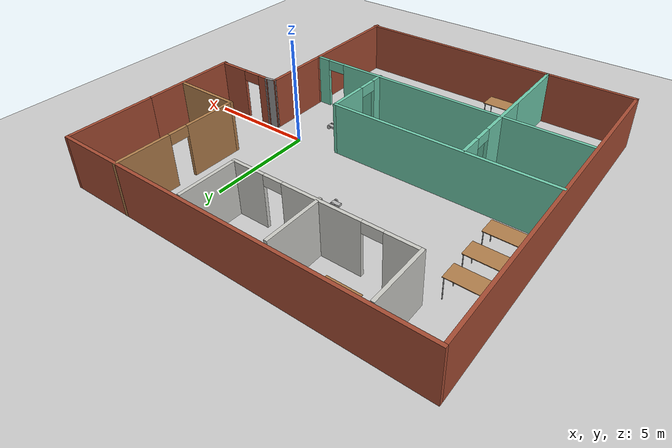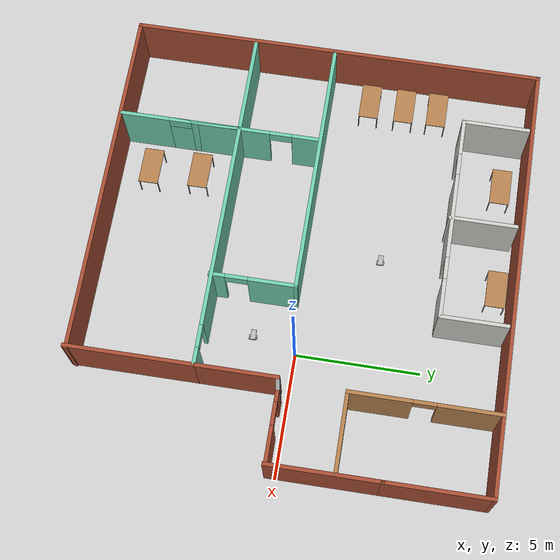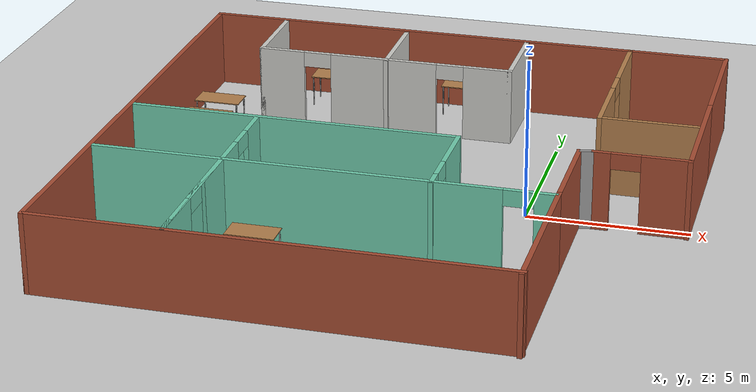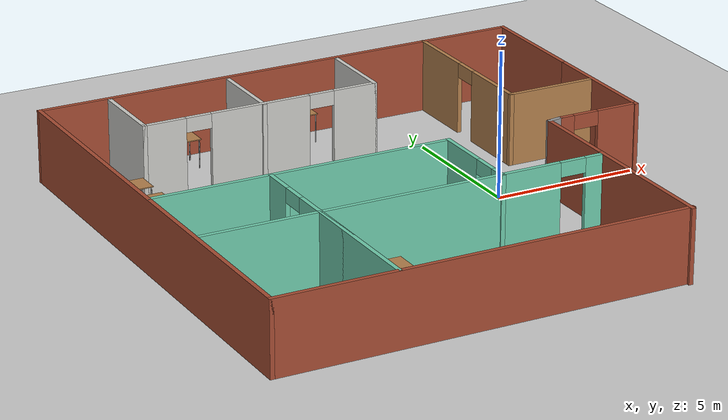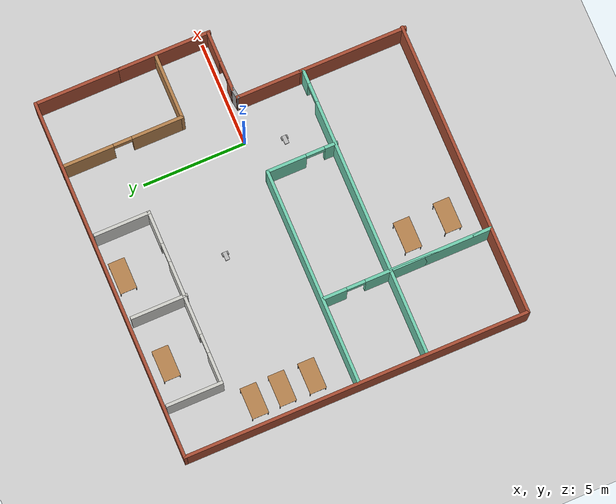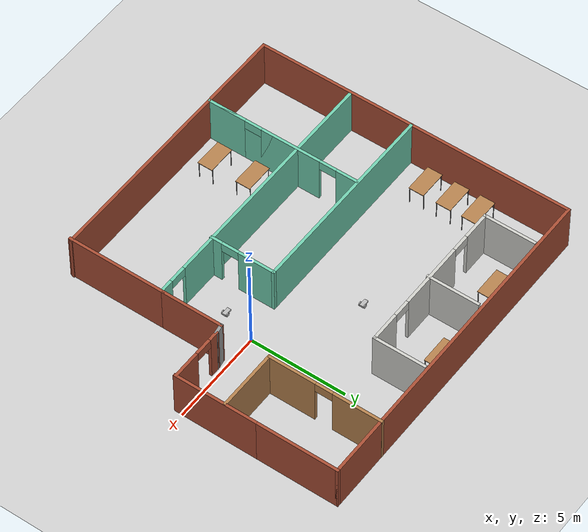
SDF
<sdf version="1.6">
 <world name="default">
  <plugin name="WelcomeMessage" filename="libwelcome_message.so"/>
  <light name="sun" type="directional">
   <pose>0 0 10 0 -0 0</pose>
   <diffuse>0.8 0.8 0.8 1</diffuse>
   <specular>0.2 0.2 0.2 1</specular>
   <attenuation>
    <range>1000</range>
    <constant>0.9</constant>
    <linear>0.01</linear>
    <quadratic>0.001</quadratic>
   </attenuation>
   <direction>-0.5 0.1 -0.9</direction>
  </light>
  <model name="ground_plane">
   <static>1</static>
   <link name="link">
    <collision name="collision">
     <geometry><plane><normal>0 0 1</normal><size>100 100</size></plane></geometry>
     <surface>
      <contact><collide_bitmask>65535</collide_bitmask></contact>
      <friction><ode><mu>100</mu><mu2>50</mu2></ode></friction>
     </surface>
    </collision>
    <visual name="visual">
     <cast_shadows>0</cast_shadows>
     <geometry><plane><normal>0 0 1</normal><size>100 100</size></plane></geometry>
     <material>
      <script><uri>file://media/materials/scripts/gazebo.material</uri><name>Gazebo/Grey</name></script>
     </material>
    </visual>
   </link>
  </model>
  <gravity>0 0 -9.8</gravity>
  <magnetic_field>6e-06 2.3e-05 -4.2e-05</magnetic_field>
  <atmosphere type="adiabatic"/>
  <physics name="default_physics" default="0" type="ode">
   <max_step_size>0.001</max_step_size>
   <real_time_factor>1</real_time_factor>
   <real_time_update_rate>1000</real_time_update_rate>
  </physics>
  <scene><ambient>0.4 0.4 0.4 1</ambient><background>0.7 0.7 0.7 1</background><shadows>1</shadows></scene>
  <spherical_coordinates>
   <surface_model>EARTH_WGS84</surface_model>
   <latitude_deg>0</latitude_deg>
   <longitude_deg>0</longitude_deg>
   <elevation>0</elevation>
   <heading_deg>0</heading_deg>
  </spherical_coordinates>
  <model name="My_building">
   <pose>-3.765 -0.202616 0 0 -0 0</pose>
   <link name="Wall_0">
    <pose>7.25 -0.08333 0 0 -0 0</pose>
    <visual name="Wall_0_Visual_0">
     <pose>-1.21198 0 1.25 0 -0 0</pose>
     <geometry><box><size>0.57604 0.15 2.5</size></box></geometry>
     <material>
      <script><uri>file://media/materials/scripts/gazebo.material</uri><name>Gazebo/Bricks</name></script>
      <ambient>1 1 1 1</ambient>
     </material>
     <meta><layer>0</layer></meta>
    </visual>
    <collision name="Wall_0_Collision_0">
     <geometry><box><size>0.57604 0.15 2.5</size></box></geometry>
     <pose>-1.21198 0 1.25 0 -0 0</pose>
    </collision>
    <visual name="Wall_0_Visual_1">
     <pose>0.73802 0 1.25 0 -0 0</pose>
     <geometry><box><size>1.52396 0.15 2.5</size></box></geometry>
     <material>
      <script><uri>file://media/materials/scripts/gazebo.material</uri><name>Gazebo/Bricks</name></script>
      <ambient>1 1 1 1</ambient>
     </material>
     <meta><layer>0</layer></meta>
    </visual>
    <collision name="Wall_0_Collision_1">
     <geometry><box><size>1.52396 0.15 2.5</size></box></geometry>
     <pose>0.73802 0 1.25 0 -0 0</pose>
    </collision>
    <visual name="Wall_0_Visual_2">
     <pose>-0.47396 0 2.25 0 -0 0</pose>
     <geometry><box><size>0.9 0.15 0.5</size></box></geometry>
     <material>
      <script><uri>file://media/materials/scripts/gazebo.material</uri><name>Gazebo/Bricks</name></script>
      <ambient>1 1 1 1</ambient>
     </material>
     <meta><layer>0</layer></meta>
    </visual>
    <collision name="Wall_0_Collision_2">
     <geometry><box><size>0.9 0.15 0.5</size></box></geometry>
     <pose>-0.47396 0 2.25 0 -0 0</pose>
    </collision>
   </link>
   <link name="Wall_10">
    <collision name="Wall_10_Collision">
     <geometry><box><size>3.25 0.15 2.5</size></box></geometry>
     <pose>0 0 1.25 0 -0 0</pose>
    </collision>
    <visual name="Wall_10_Visual">
     <pose>0 0 1.25 0 -0 0</pose>
     <geometry><box><size>3.25 0.15 2.5</size></box></geometry>
     <material>
      <script><uri>file://media/materials/scripts/gazebo.material</uri><name>Gazebo/Bricks</name></script>
      <ambient>1 1 1 1</ambient>
     </material>
     <meta><layer>0</layer></meta>
    </visual>
    <pose>5.39586 -1.70043 0 0 -0 1.5708</pose>
   </link>
   <link name="Wall_11">
    <collision name="Wall_11_Collision">
     <geometry><box><size>0.584358 0.15 2.5</size></box></geometry>
     <pose>0 0 1.25 0 -0 0</pose>
    </collision>
    <visual name="Wall_11_Visual">
     <pose>0 0 1.25 0 -0 0</pose>
     <geometry><box><size>0.584358 0.15 2.5</size></box></geometry>
     <material>
      <script><uri>file://media/materials/scripts/gazebo.material</uri><name>Gazebo/Grey</name></script>
      <ambient>1 1 1 1</ambient>
     </material>
     <meta><layer>0</layer></meta>
    </visual>
    <pose>5.61043 -0.116881 0 0 -0 0.155107</pose>
   </link>
   <link name="Wall_13">
    <pose>-1.60533 -3.36158 0 0 -0 0</pose>
    <visual name="Wall_13_Visual_0">
     <pose>-0.790462 0 1.25 0 -0 0</pose>
     <geometry><box><size>12.4191 0.15 2.5</size></box></geometry>
     <material>
      <script><uri>file://media/materials/scripts/gazebo.material</uri><name>Gazebo/Grey</name></script>
      <ambient>0.435294 0.796078 0.67451 1</ambient>
     </material>
     <meta><layer>0</layer></meta>
    </visual>
    <collision name="Wall_13_Collision_0">
     <geometry><box><size>12.4191 0.15 2.5</size></box></geometry>
     <pose>-0.790462 0 1.25 0 -0 0</pose>
    </collision>
    <visual name="Wall_13_Visual_1">
     <pose>6.65954 0 1.25 0 -0 0</pose>
     <geometry><box><size>0.680924 0.15 2.5</size></box></geometry>
     <material>
      <script><uri>file://media/materials/scripts/gazebo.material</uri><name>Gazebo/Grey</name></script>
      <ambient>0.435294 0.796078 0.67451 1</ambient>
     </material>
     <meta><layer>0</layer></meta>
    </visual>
    <collision name="Wall_13_Collision_1">
     <geometry><box><size>0.680924 0.15 2.5</size></box></geometry>
     <pose>6.65954 0 1.25 0 -0 0</pose>
    </collision>
    <visual name="Wall_13_Visual_2">
     <pose>5.86908 0 2.25 0 -0 0</pose>
     <geometry><box><size>0.9 0.15 0.5</size></box></geometry>
     <material>
      <script><uri>file://media/materials/scripts/gazebo.material</uri><name>Gazebo/Grey</name></script>
      <ambient>0.435294 0.796078 0.67451 1</ambient>
     </material>
     <meta><layer>0</layer></meta>
    </visual>
    <collision name="Wall_13_Collision_2">
     <geometry><box><size>0.9 0.15 0.5</size></box></geometry>
     <pose>5.86908 0 2.25 0 -0 0</pose>
    </collision>
   </link>
   <link name="Wall_15">
    <collision name="Wall_15_Collision">
     <geometry><box><size>10.5 0.15 2.5</size></box></geometry>
     <pose>0 0 1.25 0 -0 0</pose>
    </collision>
    <visual name="Wall_15_Visual">
     <pose>0 0 1.25 0 -0 0</pose>
     <geometry><box><size>10.5 0.15 2.5</size></box></geometry>
     <material>
      <script><uri>file://media/materials/scripts/gazebo.material</uri><name>Gazebo/Grey</name></script>
      <ambient>0.435294 0.796078 0.67451 1</ambient>
     </material>
     <meta><layer>0</layer></meta>
    </visual>
    <pose>-3.44837 -0.058384 0 0 -0 0</pose>
   </link>
   <link name="Wall_16">
    <pose>1.72662 -1.73338 0 0 0 -1.5708</pose>
    <visual name="Wall_16_Visual_0">
     <pose>-0.774402 0 1.25 0 -0 0</pose>
     <geometry><box><size>1.9512 0.15 2.5</size></box></geometry>
     <material>
      <script><uri>file://media/materials/scripts/gazebo.material</uri><name>Gazebo/Grey</name></script>
      <ambient>0.435294 0.796078 0.67451 1</ambient>
     </material>
     <meta><layer>0</layer></meta>
    </visual>
    <collision name="Wall_16_Collision_0">
     <geometry><box><size>1.9512 0.15 2.5</size></box></geometry>
     <pose>-0.774402 0 1.25 0 -0 0</pose>
    </collision>
    <visual name="Wall_16_Visual_1">
     <pose>1.4256 0 1.25 0 -0 0</pose>
     <geometry><box><size>0.648804 0.15 2.5</size></box></geometry>
     <material>
      <script><uri>file://media/materials/scripts/gazebo.material</uri><name>Gazebo/Grey</name></script>
      <ambient>0.435294 0.796078 0.67451 1</ambient>
     </material>
     <meta><layer>0</layer></meta>
    </visual>
    <collision name="Wall_16_Collision_1">
     <geometry><box><size>0.648804 0.15 2.5</size></box></geometry>
     <pose>1.4256 0 1.25 0 -0 0</pose>
    </collision>
    <visual name="Wall_16_Visual_2">
     <pose>0.651196 0 2.25 0 -0 0</pose>
     <geometry><box><size>0.9 0.15 0.5</size></box></geometry>
     <material>
      <script><uri>file://media/materials/scripts/gazebo.material</uri><name>Gazebo/Grey</name></script>
      <ambient>0.435294 0.796078 0.67451 1</ambient>
     </material>
     <meta><layer>0</layer></meta>
    </visual>
    <collision name="Wall_16_Collision_2">
     <geometry><box><size>0.9 0.15 0.5</size></box></geometry>
     <pose>0.651196 0 2.25 0 -0 0</pose>
    </collision>
   </link>
   <link name="Wall_18">
    <collision name="Wall_18_Collision">
     <geometry><box><size>3.25 0.15 2.5</size></box></geometry>
     <pose>0 0 1.25 0 -0 0</pose>
    </collision>
    <visual name="Wall_18_Visual">
     <pose>0 0 1.25 0 -0 0</pose>
     <geometry><box><size>3.25 0.15 2.5</size></box></geometry>
     <material>
      <script><uri>file://media/materials/scripts/gazebo.material</uri><name>Gazebo/Wood</name></script>
      <ambient>0.435294 0.796078 0.67451 1</ambient>
     </material>
     <meta><layer>0</layer></meta>
    </visual>
    <pose>7.087 2.50043 0 0 -0 3.14159</pose>
   </link>
   <link name="Wall_19">
    <pose>5.537 5.42543 0 0 -0 1.5708</pose>
    <visual name="Wall_19_Visual_0">
     <pose>-1.73631 0 1.25 0 -0 0</pose>
     <geometry><box><size>2.52738 0.15 2.5</size></box></geometry>
     <material>
      <script><uri>file://media/materials/scripts/gazebo.material</uri><name>Gazebo/Wood</name></script>
      <ambient>0.435294 0.796078 0.67451 1</ambient>
     </material>
     <meta><layer>0</layer></meta>
    </visual>
    <collision name="Wall_19_Collision_0">
     <geometry><box><size>2.52738 0.15 2.5</size></box></geometry>
     <pose>-1.73631 0 1.25 0 -0 0</pose>
    </collision>
    <visual name="Wall_19_Visual_1">
     <pose>1.71369 0 1.25 0 -0 0</pose>
     <geometry><box><size>2.57262 0.15 2.5</size></box></geometry>
     <material>
      <script><uri>file://media/materials/scripts/gazebo.material</uri><name>Gazebo/Wood</name></script>
      <ambient>0.435294 0.796078 0.67451 1</ambient>
     </material>
     <meta><layer>0</layer></meta>
    </visual>
    <collision name="Wall_19_Collision_1">
     <geometry><box><size>2.57262 0.15 2.5</size></box></geometry>
     <pose>1.71369 0 1.25 0 -0 0</pose>
    </collision>
    <visual name="Wall_19_Visual_2">
     <pose>-0.022624 0 2.25 0 -0 0</pose>
     <geometry><box><size>0.9 0.15 0.5</size></box></geometry>
     <material>
      <script><uri>file://media/materials/scripts/gazebo.material</uri><name>Gazebo/Wood</name></script>
      <ambient>0.435294 0.796078 0.67451 1</ambient>
     </material>
     <meta><layer>0</layer></meta>
    </visual>
    <collision name="Wall_19_Collision_2">
     <geometry><box><size>0.9 0.15 0.5</size></box></geometry>
     <pose>-0.022624 0 2.25 0 -0 0</pose>
    </collision>
   </link>
   <link name="Wall_2">
    <collision name="Wall_2_Collision">
     <geometry><box><size>4.52247 0.15 2.5</size></box></geometry>
     <pose>0 0 1.25 0 -0 0</pose>
    </collision>
    <visual name="Wall_2_Visual">
     <pose>0 0 1.25 0 -0 0</pose>
     <geometry><box><size>4.52247 0.15 2.5</size></box></geometry>
     <material>
      <script><uri>file://media/materials/scripts/gazebo.material</uri><name>Gazebo/Bricks</name></script>
      <ambient>0.435294 0.796078 0.67451 1</ambient>
     </material>
     <meta><layer>0</layer></meta>
    </visual>
    <pose>8.675 2.05638 0 0 -0 1.5708</pose>
   </link>
   <link name="Wall_22">
    <collision name="Wall_22_Collision">
     <geometry><box><size>2.75 0.15 2.5</size></box></geometry>
     <pose>0 0 1.25 0 -0 0</pose>
    </collision>
    <visual name="Wall_22_Visual">
     <pose>0 0 1.25 0 -0 0</pose>
     <geometry><box><size>2.75 0.15 2.5</size></box></geometry>
     <material>
      <script><uri>file://media/materials/scripts/gazebo.material</uri><name>Gazebo/CeilingTiled</name></script>
      <ambient>1 1 1 1</ambient>
     </material>
     <meta><layer>0</layer></meta>
    </visual>
    <pose>-6.25504 6.86233 0 0 0 -1.5708</pose>
   </link>
   <link name="Wall_23">
    <pose>-2.08004 5.56233 0 0 -0 0</pose>
    <visual name="Wall_23_Visual_0">
     <pose>-3.48228 0 1.25 0 -0 0</pose>
     <geometry><box><size>1.53544 0.15 2.5</size></box></geometry>
     <material>
      <script><uri>file://media/materials/scripts/gazebo.material</uri><name>Gazebo/CeilingTiled</name></script>
      <ambient>1 1 1 1</ambient>
     </material>
     <meta><layer>0</layer></meta>
    </visual>
    <collision name="Wall_23_Collision_0">
     <geometry><box><size>1.53544 0.15 2.5</size></box></geometry>
     <pose>-3.48228 0 1.25 0 -0 0</pose>
    </collision>
    <visual name="Wall_23_Visual_1">
     <pose>-0.035712 0 1.25 0 -0 0</pose>
     <geometry><box><size>3.55769 0.15 2.5</size></box></geometry>
     <material>
      <script><uri>file://media/materials/scripts/gazebo.material</uri><name>Gazebo/CeilingTiled</name></script>
      <ambient>1 1 1 1</ambient>
     </material>
     <meta><layer>0</layer></meta>
    </visual>
    <collision name="Wall_23_Collision_1">
     <geometry><box><size>3.55769 0.15 2.5</size></box></geometry>
     <pose>-0.035712 0 1.25 0 -0 0</pose>
    </collision>
    <visual name="Wall_23_Visual_2">
     <pose>3.44657 0 1.25 0 -0 0</pose>
     <geometry><box><size>1.60686 0.15 2.5</size></box></geometry>
     <material>
      <script><uri>file://media/materials/scripts/gazebo.material</uri><name>Gazebo/CeilingTiled</name></script>
      <ambient>1 1 1 1</ambient>
     </material>
     <meta><layer>0</layer></meta>
    </visual>
    <collision name="Wall_23_Collision_2">
     <geometry><box><size>1.60686 0.15 2.5</size></box></geometry>
     <pose>3.44657 0 1.25 0 -0 0</pose>
    </collision>
    <visual name="Wall_23_Visual_3">
     <pose>-2.26456 0 2.25 0 -0 0</pose>
     <geometry><box><size>0.9 0.15 0.5</size></box></geometry>
     <material>
      <script><uri>file://media/materials/scripts/gazebo.material</uri><name>Gazebo/CeilingTiled</name></script>
      <ambient>1 1 1 1</ambient>
     </material>
     <meta><layer>0</layer></meta>
    </visual>
    <collision name="Wall_23_Collision_3">
     <geometry><box><size>0.9 0.15 0.5</size></box></geometry>
     <pose>-2.26456 0 2.25 0 -0 0</pose>
    </collision>
    <visual name="Wall_23_Visual_4">
     <pose>2.19313 0 2.25 0 -0 0</pose>
     <geometry><box><size>0.9 0.15 0.5</size></box></geometry>
     <material>
      <script><uri>file://media/materials/scripts/gazebo.material</uri><name>Gazebo/CeilingTiled</name></script>
      <ambient>1 1 1 1</ambient>
     </material>
     <meta><layer>0</layer></meta>
    </visual>
    <collision name="Wall_23_Collision_4">
     <geometry><box><size>0.9 0.15 0.5</size></box></geometry>
     <pose>2.19313 0 2.25 0 -0 0</pose>
    </collision>
   </link>
   <link name="Wall_24">
    <collision name="Wall_24_Collision">
     <geometry><box><size>2.75 0.15 2.5</size></box></geometry>
     <pose>0 0 1.25 0 -0 0</pose>
    </collision>
    <visual name="Wall_24_Visual">
     <pose>0 0 1.25 0 -0 0</pose>
     <geometry><box><size>2.75 0.15 2.5</size></box></geometry>
     <material>
      <script><uri>file://media/materials/scripts/gazebo.material</uri><name>Gazebo/CeilingTiled</name></script>
      <ambient>1 1 1 1</ambient>
     </material>
     <meta><layer>0</layer></meta>
    </visual>
    <pose>2.09496 6.86233 0 0 -0 1.5708</pose>
   </link>
   <link name="Wall_26">
    <collision name="Wall_26_Collision">
     <geometry><box><size>2.75 0.15 2.5</size></box></geometry>
     <pose>0 0 1.25 0 -0 0</pose>
    </collision>
    <visual name="Wall_26_Visual">
     <pose>0 0 1.25 0 -0 0</pose>
     <geometry><box><size>2.75 0.15 2.5</size></box></geometry>
     <material>
      <script><uri>file://media/materials/scripts/gazebo.material</uri><name>Gazebo/CeilingTiled</name></script>
      <ambient>1 1 1 1</ambient>
     </material>
     <meta><layer>0</layer></meta>
    </visual>
    <pose>-2.00962 6.79158 0 0 0 -1.5708</pose>
   </link>
   <link name="Wall_28">
    <collision name="Wall_28_Collision">
     <geometry><box><size>5 0.15 2.5</size></box></geometry>
     <pose>0 0 1.25 0 -0 0</pose>
    </collision>
    <visual name="Wall_28_Visual">
     <pose>0 0 1.25 0 -0 0</pose>
     <geometry><box><size>5 0.15 2.5</size></box></geometry>
     <material>
      <script><uri>file://media/materials/scripts/gazebo.material</uri><name>Gazebo/Grey</name></script>
      <ambient>0.435294 0.796078 0.67451 1</ambient>
     </material>
     <meta><layer>0</layer></meta>
    </visual>
    <pose>-4.55687 -5.79607 0 0 0 -1.5708</pose>
   </link>
   <link name="Wall_29">
    <pose>-4.55687 -4.17107 0 0 -0 1.5708</pose>
    <visual name="Wall_29_Visual_0">
     <pose>-3.09037 0 1.25 0 -0 0</pose>
     <geometry><box><size>2.06926 0.15 2.5</size></box></geometry>
     <material>
      <script><uri>file://media/materials/scripts/gazebo.material</uri><name>Gazebo/Grey</name></script>
      <ambient>0.435294 0.796078 0.67451 1</ambient>
     </material>
     <meta><layer>0</layer></meta>
    </visual>
    <collision name="Wall_29_Collision_0">
     <geometry><box><size>2.06926 0.15 2.5</size></box></geometry>
     <pose>-3.09037 0 1.25 0 -0 0</pose>
    </collision>
    <visual name="Wall_29_Visual_1">
     <pose>0.446215 0 1.25 0 -0 0</pose>
     <geometry><box><size>3.20391 0.15 2.5</size></box></geometry>
     <material>
      <script><uri>file://media/materials/scripts/gazebo.material</uri><name>Gazebo/Grey</name></script>
      <ambient>0.435294 0.796078 0.67451 1</ambient>
     </material>
     <meta><layer>0</layer></meta>
    </visual>
    <collision name="Wall_29_Collision_1">
     <geometry><box><size>3.20391 0.15 2.5</size></box></geometry>
     <pose>0.446215 0 1.25 0 -0 0</pose>
    </collision>
    <visual name="Wall_29_Visual_2">
     <pose>3.53659 0 1.25 0 -0 0</pose>
     <geometry><box><size>1.17683 0.15 2.5</size></box></geometry>
     <material>
      <script><uri>file://media/materials/scripts/gazebo.material</uri><name>Gazebo/Grey</name></script>
      <ambient>0.435294 0.796078 0.67451 1</ambient>
     </material>
     <meta><layer>0</layer></meta>
    </visual>
    <collision name="Wall_29_Collision_2">
     <geometry><box><size>1.17683 0.15 2.5</size></box></geometry>
     <pose>3.53659 0 1.25 0 -0 0</pose>
    </collision>
    <visual name="Wall_29_Visual_3">
     <pose>-1.60574 0 2.25 0 -0 0</pose>
     <geometry><box><size>0.9 0.15 0.5</size></box></geometry>
     <material>
      <script><uri>file://media/materials/scripts/gazebo.material</uri><name>Gazebo/Grey</name></script>
      <ambient>0.435294 0.796078 0.67451 1</ambient>
     </material>
     <meta><layer>0</layer></meta>
    </visual>
    <collision name="Wall_29_Collision_3">
     <geometry><box><size>0.9 0.15 0.5</size></box></geometry>
     <pose>-1.60574 0 2.25 0 -0 0</pose>
    </collision>
    <visual name="Wall_29_Visual_4">
     <pose>2.49817 0 2.25 0 -0 0</pose>
     <geometry><box><size>0.9 0.15 0.5</size></box></geometry>
     <material>
      <script><uri>file://media/materials/scripts/gazebo.material</uri><name>Gazebo/Grey</name></script>
      <ambient>0.435294 0.796078 0.67451 1</ambient>
     </material>
     <meta><layer>0</layer></meta>
    </visual>
    <collision name="Wall_29_Collision_4">
     <geometry><box><size>0.9 0.15 0.5</size></box></geometry>
     <pose>2.49817 0 2.25 0 -0 0</pose>
    </collision>
   </link>
   <link name="Wall_3">
    <collision name="Wall_3_Collision">
     <geometry><box><size>4.25 0.15 2.5</size></box></geometry>
     <pose>0 0 1.25 0 -0 0</pose>
    </collision>
    <visual name="Wall_3_Visual">
     <pose>0 0 1.25 0 -0 0</pose>
     <geometry><box><size>4.25 0.15 2.5</size></box></geometry>
     <material>
      <script><uri>file://media/materials/scripts/gazebo.material</uri><name>Gazebo/Bricks</name></script>
      <ambient>1 1 1 1</ambient>
     </material>
     <meta><layer>0</layer></meta>
    </visual>
    <pose>8.675 6.29262 0 0 -0 1.5708</pose>
   </link>
   <link name="Wall_4">
    <collision name="Wall_4_Collision">
     <geometry><box><size>17.5 0.15 2.5</size></box></geometry>
     <pose>0 0 1.25 0 -0 0</pose>
    </collision>
    <visual name="Wall_4_Visual">
     <pose>0 0 1.25 0 -0 0</pose>
     <geometry><box><size>17.5 0.15 2.5</size></box></geometry>
     <material>
      <script><uri>file://media/materials/scripts/gazebo.material</uri><name>Gazebo/Bricks</name></script>
      <ambient>1 1 1 1</ambient>
     </material>
     <meta><layer>0</layer></meta>
    </visual>
    <pose>0 8.34262 0 0 -0 3.14159</pose>
   </link>
   <link name="Wall_5">
    <collision name="Wall_5_Collision">
     <geometry><box><size>16.75 0.15 2.5</size></box></geometry>
     <pose>0 0 1.25 0 -0 0</pose>
    </collision>
    <visual name="Wall_5_Visual">
     <pose>0 0 1.25 0 -0 0</pose>
     <geometry><box><size>16.75 0.15 2.5</size></box></geometry>
     <material>
      <script><uri>file://media/materials/scripts/gazebo.material</uri><name>Gazebo/Bricks</name></script>
      <ambient>1 1 1 1</ambient>
     </material>
     <meta><layer>0</layer></meta>
    </visual>
    <pose>-8.675 0.042616 0 0 0 -1.5708</pose>
   </link>
   <link name="Wall_6">
    <collision name="Wall_6_Collision">
     <geometry><box><size>14.2674 0.15 2.5</size></box></geometry>
     <pose>0 0 1.25 0 -0 0</pose>
    </collision>
    <visual name="Wall_6_Visual">
     <pose>0 0 1.25 0 -0 0</pose>
     <geometry><box><size>14.2674 0.15 2.5</size></box></geometry>
     <material>
      <script><uri>file://media/materials/scripts/gazebo.material</uri><name>Gazebo/Bricks</name></script>
      <ambient>1 1 1 1</ambient>
     </material>
     <meta><layer>0</layer></meta>
    </visual>
    <pose>-1.61631 -8.25738 0 0 -0 0</pose>
   </link>
   <link name="Wall_7">
    <collision name="Wall_7_Collision">
     <geometry><box><size>5.25 0.15 2.5</size></box></geometry>
     <pose>0 0 1.25 0 -0 0</pose>
    </collision>
    <visual name="Wall_7_Visual">
     <pose>0 0 1.25 0 -0 0</pose>
     <geometry><box><size>5.25 0.15 2.5</size></box></geometry>
     <material>
      <script><uri>file://media/materials/scripts/gazebo.material</uri><name>Gazebo/Bricks</name></script>
      <ambient>1 1 1 1</ambient>
     </material>
     <meta><layer>0</layer></meta>
    </visual>
    <pose>5.39586 -5.80043 0 0 -0 1.5708</pose>
   </link>
   <static>1</static>
  </model>
  <model name="table">
   <static>1</static>
   <link name="link">
    <collision name="surface">
     <pose>0 0 1 0 -0 0</pose>
     <geometry><box><size>1.5 0.8 0.03</size></box></geometry>
     <surface><friction><ode><mu>0.6</mu><mu2>0.6</mu2></ode></friction></surface>
    </collision>
    <visual name="visual1">
     <pose>0 0 1 0 -0 0</pose>
     <geometry><box><size>1.5 0.8 0.03</size></box></geometry>
     <material>
      <script><uri>file://media/materials/scripts/gazebo.material</uri><name>Gazebo/Wood</name></script>
     </material>
    </visual>
    <collision name="front_left_leg">
     <pose>0.68 0.38 0.5 0 -0 0</pose>
     <geometry><cylinder><radius>0.02</radius><length>1</length></cylinder></geometry>
    </collision>
    <visual name="front_left_leg">
     <pose>0.68 0.38 0.5 0 -0 0</pose>
     <geometry><cylinder><radius>0.02</radius><length>1</length></cylinder></geometry>
     <material>
      <script><uri>file://media/materials/scripts/gazebo.material</uri><name>Gazebo/Grey</name></script>
     </material>
    </visual>
    <collision name="front_right_leg">
     <pose>0.68 -0.38 0.5 0 -0 0</pose>
     <geometry><cylinder><radius>0.02</radius><length>1</length></cylinder></geometry>
    </collision>
    <visual name="front_right_leg">
     <pose>0.68 -0.38 0.5 0 -0 0</pose>
     <geometry><cylinder><radius>0.02</radius><length>1</length></cylinder></geometry>
     <material>
      <script><uri>file://media/materials/scripts/gazebo.material</uri><name>Gazebo/Grey</name></script>
     </material>
    </visual>
    <collision name="back_right_leg">
     <pose>-0.68 -0.38 0.5 0 -0 0</pose>
     <geometry><cylinder><radius>0.02</radius><length>1</length></cylinder></geometry>
    </collision>
    <visual name="back_right_leg">
     <pose>-0.68 -0.38 0.5 0 -0 0</pose>
     <geometry><cylinder><radius>0.02</radius><length>1</length></cylinder></geometry>
     <material>
      <script><uri>file://media/materials/scripts/gazebo.material</uri><name>Gazebo/Grey</name></script>
     </material>
    </visual>
    <collision name="back_left_leg">
     <pose>-0.68 0.38 0.5 0 -0 0</pose>
     <geometry><cylinder><radius>0.02</radius><length>1</length></cylinder></geometry>
    </collision>
    <visual name="back_left_leg">
     <pose>-0.68 0.38 0.5 0 -0 0</pose>
     <geometry><cylinder><radius>0.02</radius><length>1</length></cylinder></geometry>
     <material>
      <script><uri>file://media/materials/scripts/gazebo.material</uri><name>Gazebo/Grey</name></script>
     </material>
    </visual>
   </link>
   <pose>-6.81269 -7.0565 0 0 -0 0</pose>
  </model>
  <model name="table_0">
   <static>1</static>
   <link name="link">
    <collision name="surface">
     <pose>0 0 1 0 -0 0</pose>
     <geometry><box><size>1.5 0.8 0.03</size></box></geometry>
     <surface><friction><ode><mu>0.6</mu><mu2>0.6</mu2></ode></friction></surface>
    </collision>
    <visual name="visual1">
     <pose>0 0 1 0 -0 0</pose>
     <geometry><box><size>1.5 0.8 0.03</size></box></geometry>
     <material>
      <script><uri>file://media/materials/scripts/gazebo.material</uri><name>Gazebo/Wood</name></script>
     </material>
    </visual>
    <collision name="front_left_leg">
     <pose>0.68 0.38 0.5 0 -0 0</pose>
     <geometry><cylinder><radius>0.02</radius><length>1</length></cylinder></geometry>
    </collision>
    <visual name="front_left_leg">
     <pose>0.68 0.38 0.5 0 -0 0</pose>
     <geometry><cylinder><radius>0.02</radius><length>1</length></cylinder></geometry>
     <material>
      <script><uri>file://media/materials/scripts/gazebo.material</uri><name>Gazebo/Grey</name></script>
     </material>
    </visual>
    <collision name="front_right_leg">
     <pose>0.68 -0.38 0.5 0 -0 0</pose>
     <geometry><cylinder><radius>0.02</radius><length>1</length></cylinder></geometry>
    </collision>
    <visual name="front_right_leg">
     <pose>0.68 -0.38 0.5 0 -0 0</pose>
     <geometry><cylinder><radius>0.02</radius><length>1</length></cylinder></geometry>
     <material>
      <script><uri>file://media/materials/scripts/gazebo.material</uri><name>Gazebo/Grey</name></script>
     </material>
    </visual>
    <collision name="back_right_leg">
     <pose>-0.68 -0.38 0.5 0 -0 0</pose>
     <geometry><cylinder><radius>0.02</radius><length>1</length></cylinder></geometry>
    </collision>
    <visual name="back_right_leg">
     <pose>-0.68 -0.38 0.5 0 -0 0</pose>
     <geometry><cylinder><radius>0.02</radius><length>1</length></cylinder></geometry>
     <material>
      <script><uri>file://media/materials/scripts/gazebo.material</uri><name>Gazebo/Grey</name></script>
     </material>
    </visual>
    <collision name="back_left_leg">
     <pose>-0.68 0.38 0.5 0 -0 0</pose>
     <geometry><cylinder><radius>0.02</radius><length>1</length></cylinder></geometry>
    </collision>
    <visual name="back_left_leg">
     <pose>-0.68 0.38 0.5 0 -0 0</pose>
     <geometry><cylinder><radius>0.02</radius><length>1</length></cylinder></geometry>
     <material>
      <script><uri>file://media/materials/scripts/gazebo.material</uri><name>Gazebo/Grey</name></script>
     </material>
    </visual>
   </link>
   <pose>-6.92484 -5.04364 0 0 -0 0</pose>
  </model>
  <model name="table_1">
   <static>1</static>
   <link name="link">
    <collision name="surface">
     <pose>0 0 1 0 -0 0</pose>
     <geometry><box><size>1.5 0.8 0.03</size></box></geometry>
     <surface><friction><ode><mu>0.6</mu><mu2>0.6</mu2></ode></friction></surface>
    </collision>
    <visual name="visual1">
     <pose>0 0 1 0 -0 0</pose>
     <geometry><box><size>1.5 0.8 0.03</size></box></geometry>
     <material>
      <script><uri>file://media/materials/scripts/gazebo.material</uri><name>Gazebo/Wood</name></script>
     </material>
    </visual>
    <collision name="front_left_leg">
     <pose>0.68 0.38 0.5 0 -0 0</pose>
     <geometry><cylinder><radius>0.02</radius><length>1</length></cylinder></geometry>
    </collision>
    <visual name="front_left_leg">
     <pose>0.68 0.38 0.5 0 -0 0</pose>
     <geometry><cylinder><radius>0.02</radius><length>1</length></cylinder></geometry>
     <material>
      <script><uri>file://media/materials/scripts/gazebo.material</uri><name>Gazebo/Grey</name></script>
     </material>
    </visual>
    <collision name="front_right_leg">
     <pose>0.68 -0.38 0.5 0 -0 0</pose>
     <geometry><cylinder><radius>0.02</radius><length>1</length></cylinder></geometry>
    </collision>
    <visual name="front_right_leg">
     <pose>0.68 -0.38 0.5 0 -0 0</pose>
     <geometry><cylinder><radius>0.02</radius><length>1</length></cylinder></geometry>
     <material>
      <script><uri>file://media/materials/scripts/gazebo.material</uri><name>Gazebo/Grey</name></script>
     </material>
    </visual>
    <collision name="back_right_leg">
     <pose>-0.68 -0.38 0.5 0 -0 0</pose>
     <geometry><cylinder><radius>0.02</radius><length>1</length></cylinder></geometry>
    </collision>
    <visual name="back_right_leg">
     <pose>-0.68 -0.38 0.5 0 -0 0</pose>
     <geometry><cylinder><radius>0.02</radius><length>1</length></cylinder></geometry>
     <material>
      <script><uri>file://media/materials/scripts/gazebo.material</uri><name>Gazebo/Grey</name></script>
     </material>
    </visual>
    <collision name="back_left_leg">
     <pose>-0.68 0.38 0.5 0 -0 0</pose>
     <geometry><cylinder><radius>0.02</radius><length>1</length></cylinder></geometry>
    </collision>
    <visual name="back_left_leg">
     <pose>-0.68 0.38 0.5 0 -0 0</pose>
     <geometry><cylinder><radius>0.02</radius><length>1</length></cylinder></geometry>
     <material>
      <script><uri>file://media/materials/scripts/gazebo.material</uri><name>Gazebo/Grey</name></script>
     </material>
    </visual>
   </link>
   <pose>-8.06151 7.2534 0 0 -0 0</pose>
  </model>
  <model name="table_2">
   <static>1</static>
   <link name="link">
    <collision name="surface">
     <pose>0 0 1 0 -0 0</pose>
     <geometry><box><size>1.5 0.8 0.03</size></box></geometry>
     <surface><friction><ode><mu>0.6</mu><mu2>0.6</mu2></ode></friction></surface>
    </collision>
    <visual name="visual1">
     <pose>0 0 1 0 -0 0</pose>
     <geometry><box><size>1.5 0.8 0.03</size></box></geometry>
     <material>
      <script><uri>file://media/materials/scripts/gazebo.material</uri><name>Gazebo/Wood</name></script>
     </material>
    </visual>
    <collision name="front_left_leg">
     <pose>0.68 0.38 0.5 0 -0 0</pose>
     <geometry><cylinder><radius>0.02</radius><length>1</length></cylinder></geometry>
    </collision>
    <visual name="front_left_leg">
     <pose>0.68 0.38 0.5 0 -0 0</pose>
     <geometry><cylinder><radius>0.02</radius><length>1</length></cylinder></geometry>
     <material>
      <script><uri>file://media/materials/scripts/gazebo.material</uri><name>Gazebo/Grey</name></script>
     </material>
    </visual>
    <collision name="front_right_leg">
     <pose>0.68 -0.38 0.5 0 -0 0</pose>
     <geometry><cylinder><radius>0.02</radius><length>1</length></cylinder></geometry>
    </collision>
    <visual name="front_right_leg">
     <pose>0.68 -0.38 0.5 0 -0 0</pose>
     <geometry><cylinder><radius>0.02</radius><length>1</length></cylinder></geometry>
     <material>
      <script><uri>file://media/materials/scripts/gazebo.material</uri><name>Gazebo/Grey</name></script>
     </material>
    </visual>
    <collision name="back_right_leg">
     <pose>-0.68 -0.38 0.5 0 -0 0</pose>
     <geometry><cylinder><radius>0.02</radius><length>1</length></cylinder></geometry>
    </collision>
    <visual name="back_right_leg">
     <pose>-0.68 -0.38 0.5 0 -0 0</pose>
     <geometry><cylinder><radius>0.02</radius><length>1</length></cylinder></geometry>
     <material>
      <script><uri>file://media/materials/scripts/gazebo.material</uri><name>Gazebo/Grey</name></script>
     </material>
    </visual>
    <collision name="back_left_leg">
     <pose>-0.68 0.38 0.5 0 -0 0</pose>
     <geometry><cylinder><radius>0.02</radius><length>1</length></cylinder></geometry>
    </collision>
    <visual name="back_left_leg">
     <pose>-0.68 0.38 0.5 0 -0 0</pose>
     <geometry><cylinder><radius>0.02</radius><length>1</length></cylinder></geometry>
     <material>
      <script><uri>file://media/materials/scripts/gazebo.material</uri><name>Gazebo/Grey</name></script>
     </material>
    </visual>
   </link>
   <pose>-3.61678 7.52536 0 0 -0 0</pose>
  </model>
  <model name="table_3">
   <static>1</static>
   <link name="link">
    <collision name="surface">
     <pose>0 0 1 0 -0 0</pose>
     <geometry><box><size>1.5 0.8 0.03</size></box></geometry>
     <surface><friction><ode><mu>0.6</mu><mu2>0.6</mu2></ode></friction></surface>
    </collision>
    <visual name="visual1">
     <pose>0 0 1 0 -0 0</pose>
     <geometry><box><size>1.5 0.8 0.03</size></box></geometry>
     <material>
      <script><uri>file://media/materials/scripts/gazebo.material</uri><name>Gazebo/Wood</name></script>
     </material>
    </visual>
    <collision name="front_left_leg">
     <pose>0.68 0.38 0.5 0 -0 0</pose>
     <geometry><cylinder><radius>0.02</radius><length>1</length></cylinder></geometry>
    </collision>
    <visual name="front_left_leg">
     <pose>0.68 0.38 0.5 0 -0 0</pose>
     <geometry><cylinder><radius>0.02</radius><length>1</length></cylinder></geometry>
     <material>
      <script><uri>file://media/materials/scripts/gazebo.material</uri><name>Gazebo/Grey</name></script>
     </material>
    </visual>
    <collision name="front_right_leg">
     <pose>0.68 -0.38 0.5 0 -0 0</pose>
     <geometry><cylinder><radius>0.02</radius><length>1</length></cylinder></geometry>
    </collision>
    <visual name="front_right_leg">
     <pose>0.68 -0.38 0.5 0 -0 0</pose>
     <geometry><cylinder><radius>0.02</radius><length>1</length></cylinder></geometry>
     <material>
      <script><uri>file://media/materials/scripts/gazebo.material</uri><name>Gazebo/Grey</name></script>
     </material>
    </visual>
    <collision name="back_right_leg">
     <pose>-0.68 -0.38 0.5 0 -0 0</pose>
     <geometry><cylinder><radius>0.02</radius><length>1</length></cylinder></geometry>
    </collision>
    <visual name="back_right_leg">
     <pose>-0.68 -0.38 0.5 0 -0 0</pose>
     <geometry><cylinder><radius>0.02</radius><length>1</length></cylinder></geometry>
     <material>
      <script><uri>file://media/materials/scripts/gazebo.material</uri><name>Gazebo/Grey</name></script>
     </material>
    </visual>
    <collision name="back_left_leg">
     <pose>-0.68 0.38 0.5 0 -0 0</pose>
     <geometry><cylinder><radius>0.02</radius><length>1</length></cylinder></geometry>
    </collision>
    <visual name="back_left_leg">
     <pose>-0.68 0.38 0.5 0 -0 0</pose>
     <geometry><cylinder><radius>0.02</radius><length>1</length></cylinder></geometry>
     <material>
      <script><uri>file://media/materials/scripts/gazebo.material</uri><name>Gazebo/Grey</name></script>
     </material>
    </visual>
   </link>
   <pose>-11.161 4.26911 0 0 -0 0</pose>
  </model>
  <model name="table_4">
   <static>1</static>
   <link name="link">
    <collision name="surface">
     <pose>0 0 1 0 -0 0</pose>
     <geometry><box><size>1.5 0.8 0.03</size></box></geometry>
     <surface><friction><ode><mu>0.6</mu><mu2>0.6</mu2></ode></friction></surface>
    </collision>
    <visual name="visual1">
     <pose>0 0 1 0 -0 0</pose>
     <geometry><box><size>1.5 0.8 0.03</size></box></geometry>
     <material>
      <script><uri>file://media/materials/scripts/gazebo.material</uri><name>Gazebo/Wood</name></script>
     </material>
    </visual>
    <collision name="front_left_leg">
     <pose>0.68 0.38 0.5 0 -0 0</pose>
     <geometry><cylinder><radius>0.02</radius><length>1</length></cylinder></geometry>
    </collision>
    <visual name="front_left_leg">
     <pose>0.68 0.38 0.5 0 -0 0</pose>
     <geometry><cylinder><radius>0.02</radius><length>1</length></cylinder></geometry>
     <material>
      <script><uri>file://media/materials/scripts/gazebo.material</uri><name>Gazebo/Grey</name></script>
     </material>
    </visual>
    <collision name="front_right_leg">
     <pose>0.68 -0.38 0.5 0 -0 0</pose>
     <geometry><cylinder><radius>0.02</radius><length>1</length></cylinder></geometry>
    </collision>
    <visual name="front_right_leg">
     <pose>0.68 -0.38 0.5 0 -0 0</pose>
     <geometry><cylinder><radius>0.02</radius><length>1</length></cylinder></geometry>
     <material>
      <script><uri>file://media/materials/scripts/gazebo.material</uri><name>Gazebo/Grey</name></script>
     </material>
    </visual>
    <collision name="back_right_leg">
     <pose>-0.68 -0.38 0.5 0 -0 0</pose>
     <geometry><cylinder><radius>0.02</radius><length>1</length></cylinder></geometry>
    </collision>
    <visual name="back_right_leg">
     <pose>-0.68 -0.38 0.5 0 -0 0</pose>
     <geometry><cylinder><radius>0.02</radius><length>1</length></cylinder></geometry>
     <material>
      <script><uri>file://media/materials/scripts/gazebo.material</uri><name>Gazebo/Grey</name></script>
     </material>
    </visual>
    <collision name="back_left_leg">
     <pose>-0.68 0.38 0.5 0 -0 0</pose>
     <geometry><cylinder><radius>0.02</radius><length>1</length></cylinder></geometry>
    </collision>
    <visual name="back_left_leg">
     <pose>-0.68 0.38 0.5 0 -0 0</pose>
     <geometry><cylinder><radius>0.02</radius><length>1</length></cylinder></geometry>
     <material>
      <script><uri>file://media/materials/scripts/gazebo.material</uri><name>Gazebo/Grey</name></script>
     </material>
    </visual>
   </link>
   <pose>-11.1341 2.90634 0 0 -0 0</pose>
  </model>
  <model name="table_5">
   <static>1</static>
   <link name="link">
    <collision name="surface">
     <pose>0 0 1 0 -0 0</pose>
     <geometry><box><size>1.5 0.8 0.03</size></box></geometry>
     <surface><friction><ode><mu>0.6</mu><mu2>0.6</mu2></ode></friction></surface>
    </collision>
    <visual name="visual1">
     <pose>0 0 1 0 -0 0</pose>
     <geometry><box><size>1.5 0.8 0.03</size></box></geometry>
     <material>
      <script><uri>file://media/materials/scripts/gazebo.material</uri><name>Gazebo/Wood</name></script>
     </material>
    </visual>
    <collision name="front_left_leg">
     <pose>0.68 0.38 0.5 0 -0 0</pose>
     <geometry><cylinder><radius>0.02</radius><length>1</length></cylinder></geometry>
    </collision>
    <visual name="front_left_leg">
     <pose>0.68 0.38 0.5 0 -0 0</pose>
     <geometry><cylinder><radius>0.02</radius><length>1</length></cylinder></geometry>
     <material>
      <script><uri>file://media/materials/scripts/gazebo.material</uri><name>Gazebo/Grey</name></script>
     </material>
    </visual>
    <collision name="front_right_leg">
     <pose>0.68 -0.38 0.5 0 -0 0</pose>
     <geometry><cylinder><radius>0.02</radius><length>1</length></cylinder></geometry>
    </collision>
    <visual name="front_right_leg">
     <pose>0.68 -0.38 0.5 0 -0 0</pose>
     <geometry><cylinder><radius>0.02</radius><length>1</length></cylinder></geometry>
     <material>
      <script><uri>file://media/materials/scripts/gazebo.material</uri><name>Gazebo/Grey</name></script>
     </material>
    </visual>
    <collision name="back_right_leg">
     <pose>-0.68 -0.38 0.5 0 -0 0</pose>
     <geometry><cylinder><radius>0.02</radius><length>1</length></cylinder></geometry>
    </collision>
    <visual name="back_right_leg">
     <pose>-0.68 -0.38 0.5 0 -0 0</pose>
     <geometry><cylinder><radius>0.02</radius><length>1</length></cylinder></geometry>
     <material>
      <script><uri>file://media/materials/scripts/gazebo.material</uri><name>Gazebo/Grey</name></script>
     </material>
    </visual>
    <collision name="back_left_leg">
     <pose>-0.68 0.38 0.5 0 -0 0</pose>
     <geometry><cylinder><radius>0.02</radius><length>1</length></cylinder></geometry>
    </collision>
    <visual name="back_left_leg">
     <pose>-0.68 0.38 0.5 0 -0 0</pose>
     <geometry><cylinder><radius>0.02</radius><length>1</length></cylinder></geometry>
     <material>
      <script><uri>file://media/materials/scripts/gazebo.material</uri><name>Gazebo/Grey</name></script>
     </material>
    </visual>
   </link>
   <pose>-11.1379 1.44892 0 0 -0 0</pose>
  </model>
  <model name="Home_Robot_1">
   <static>0</static>
   <link name="chassis">
    <pose>0 0 0.1 0 -0 0</pose>
    <collision name="collision"><geometry><box><size>0.4 0.2 0.1</size></box></geometry></collision>
    <visual name="visual"><geometry><box><size>0.4 0.2 0.1</size></box></geometry></visual>
    <collision name="caster_collision">
     <pose>-0.15 0 -0.05 0 -0 0</pose>
     <geometry><sphere><radius>0.05</radius></sphere></geometry>
     <surface><friction><ode><mu>0</mu><mu2>0</mu2><slip1>1</slip1><slip2>1</slip2></ode></friction></surface>
    </collision>
    <visual name="caster_visual">
     <pose>-0.15 0 -0.05 0 -0 0</pose>
     <geometry><sphere><radius>0.05</radius></sphere></geometry>
    </visual>
    <inertial>
     <inertia><ixx>1</ixx><ixy>0</ixy><ixz>0</ixz><iyy>1</iyy><iyz>0</iyz><izz>1</izz></inertia>
     <mass>1</mass>
    </inertial>
   </link>
   <link name="left_wheel">
    <pose>0.1 0.13 0.1 -0 1.5707 1.5707</pose>
    <collision name="collision">
     <geometry><cylinder><radius>0.1</radius><length>0.05</length></cylinder></geometry>
    </collision>
    <visual name="visual">
     <geometry><cylinder><radius>0.1</radius><length>0.05</length></cylinder></geometry>
    </visual>
    <inertial>
     <inertia><ixx>1</ixx><ixy>0</ixy><ixz>0</ixz><iyy>1</iyy><iyz>0</iyz><izz>1</izz></inertia>
     <mass>1</mass>
    </inertial>
   </link>
   <link name="right_wheel">
    <pose>0.1 -0.13 0.1 -0 1.5707 1.5707</pose>
    <collision name="collision">
     <geometry><cylinder><radius>0.1</radius><length>0.05</length></cylinder></geometry>
    </collision>
    <visual name="visual">
     <geometry><cylinder><radius>0.1</radius><length>0.05</length></cylinder></geometry>
    </visual>
    <inertial>
     <inertia><ixx>1</ixx><ixy>0</ixy><ixz>0</ixz><iyy>1</iyy><iyz>0</iyz><izz>1</izz></inertia>
     <mass>1</mass>
    </inertial>
   </link>
   <joint name="left_wheel_hinge" type="revolute">
    <pose>0 0 -0.03 0 -0 0</pose>
    <child>left_wheel</child>
    <parent>chassis</parent>
    <axis>
     <xyz>0 1 0</xyz>
     <use_parent_model_frame>1</use_parent_model_frame>
     <limit><lower>-1e+16</lower><upper>1e+16</upper></limit>
     <dynamics><spring_reference>0</spring_reference><spring_stiffness>0</spring_stiffness></dynamics>
    </axis>
   </joint>
   <joint name="right_wheel_hinge" type="revolute">
    <pose>0 0 0.03 0 -0 0</pose>
    <child>right_wheel</child>
    <parent>chassis</parent>
    <axis>
     <xyz>0 1 0</xyz>
     <use_parent_model_frame>1</use_parent_model_frame>
     <limit><lower>-1e+16</lower><upper>1e+16</upper></limit>
     <dynamics><spring_reference>0</spring_reference><spring_stiffness>0</spring_stiffness></dynamics>
    </axis>
   </joint>
   <pose>-4.46584 2.82485 2e-06 3.8e-05 9e-06 0.021393</pose>
  </model>
  <model name="Home_Robot_1_clone">
   <static>0</static>
   <link name="chassis">
    <pose>0 0 0.1 0 -0 0</pose>
    <collision name="collision"><geometry><box><size>0.4 0.2 0.1</size></box></geometry></collision>
    <visual name="visual"><geometry><box><size>0.4 0.2 0.1</size></box></geometry></visual>
    <collision name="caster_collision">
     <pose>-0.15 0 -0.05 0 -0 0</pose>
     <geometry><sphere><radius>0.05</radius></sphere></geometry>
     <surface><friction><ode><mu>0</mu><mu2>0</mu2><slip1>1</slip1><slip2>1</slip2></ode></friction></surface>
    </collision>
    <visual name="caster_visual">
     <pose>-0.15 0 -0.05 0 -0 0</pose>
     <geometry><sphere><radius>0.05</radius></sphere></geometry>
    </visual>
    <inertial>
     <inertia><ixx>1</ixx><ixy>0</ixy><ixz>0</ixz><iyy>1</iyy><iyz>0</iyz><izz>1</izz></inertia>
     <mass>1</mass>
    </inertial>
   </link>
   <link name="left_wheel">
    <pose>0.1 0.13 0.1 -0 1.5707 1.5707</pose>
    <collision name="collision">
     <geometry><cylinder><radius>0.1</radius><length>0.05</length></cylinder></geometry>
    </collision>
    <visual name="visual">
     <geometry><cylinder><radius>0.1</radius><length>0.05</length></cylinder></geometry>
    </visual>
    <inertial>
     <inertia><ixx>1</ixx><ixy>0</ixy><ixz>0</ixz><iyy>1</iyy><iyz>0</iyz><izz>1</izz></inertia>
     <mass>1</mass>
    </inertial>
   </link>
   <link name="right_wheel">
    <pose>0.1 -0.13 0.1 -0 1.5707 1.5707</pose>
    <collision name="collision">
     <geometry><cylinder><radius>0.1</radius><length>0.05</length></cylinder></geometry>
    </collision>
    <visual name="visual">
     <geometry><cylinder><radius>0.1</radius><length>0.05</length></cylinder></geometry>
    </visual>
    <inertial>
     <inertia><ixx>1</ixx><ixy>0</ixy><ixz>0</ixz><iyy>1</iyy><iyz>0</iyz><izz>1</izz></inertia>
     <mass>1</mass>
    </inertial>
   </link>
   <joint name="left_wheel_hinge" type="revolute">
    <pose>0 0 -0.03 0 -0 0</pose>
    <child>left_wheel</child>
    <parent>chassis</parent>
    <axis>
     <xyz>0 1 0</xyz>
     <use_parent_model_frame>1</use_parent_model_frame>
     <limit><lower>-1e+16</lower><upper>1e+16</upper></limit>
     <dynamics><spring_reference>0</spring_reference><spring_stiffness>0</spring_stiffness></dynamics>
    </axis>
   </joint>
   <joint name="right_wheel_hinge" type="revolute">
    <pose>0 0 0.03 0 -0 0</pose>
    <child>right_wheel</child>
    <parent>chassis</parent>
    <axis>
     <xyz>0 1 0</xyz>
     <use_parent_model_frame>1</use_parent_model_frame>
     <limit><lower>-1e+16</lower><upper>1e+16</upper></limit>
     <dynamics><spring_reference>0</spring_reference><spring_stiffness>0</spring_stiffness></dynamics>
    </axis>
   </joint>
   <pose>-0.564364 -1.76009 6e-06 3.9e-05 3.8e-05 0.022601</pose>
  </model>
 </world>
</sdf>
